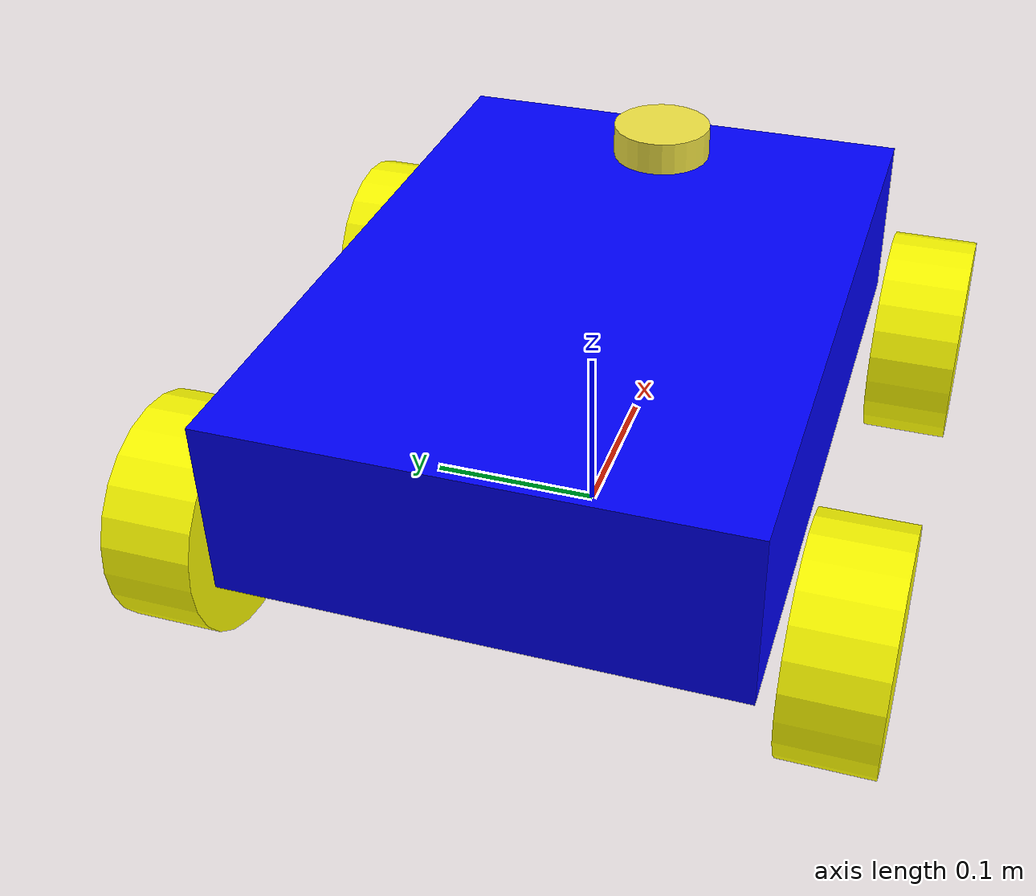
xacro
<?xml version="1.0"?>
<robot xmlns:xacro="http://www.ros.org/wiki/xacro" name="simple_robot">

  <!-- Include constants and parts -->
  <xacro:include filename="constants.xacro"/>
  <xacro:include filename="chassis.xacro"/>
  <xacro:include filename="$(find robot_description)/urdf/constants.xacro"/>
  <xacro:include filename="$(find robot_description)/urdf/base_link.xacro"/>
  <xacro:include filename="$(find robot_description)/urdf/wheel.xacro"/>
  <xacro:include filename="$(find robot_description)/urdf/laser.xacro"/>

  <!-- Set Laser -->
  <xacro:laser_part parent_link="base_link" joint_name="front_laser_joint" xyz="0.15 0 ${chassis_height + (laser_length/2) + wheel_radius}" rpy="0 0 0"/>

  <!-- Create wheels -->
  <xacro:wheel_macro name="rear_left_wheel"   parent="base_link" xyz="-${wheel_separation_x/2}  ${wheel_separation_y/2} ${wheel_radius}" rpy="1.5708 0 0"/>
  <xacro:wheel_macro name="rear_right_wheel"  parent="base_link" xyz="-${wheel_separation_x/2} -${wheel_separation_y/2} ${wheel_radius}" rpy="1.5708 0 0"/>
  <xacro:wheel_macro name="front_left_wheel"  parent="base_link" xyz=" ${wheel_separation_x/2}  ${wheel_separation_y/2} ${wheel_radius}" rpy="1.5708 0 0"/>
  <xacro:wheel_macro name="front_right_wheel" parent="base_link" xyz=" ${wheel_separation_x/2} -${wheel_separation_y/2} ${wheel_radius}" rpy="1.5708 0 0"/>

</robot>

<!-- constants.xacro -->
<robot xmlns:xacro="http://www.ros.org/wiki/xacro" name="constants">

  <xacro:property name="chassis_length" value="0.40"/>
  <xacro:property name="chassis_width" value="0.28"/>
  <xacro:property name="chassis_height" value="0.1"/>

  <xacro:property name="wheel_radius" value="0.0625"/>
  <xacro:property name="wheel_thickness" value="0.05"/>
  <xacro:property name="wheel_separation_x" value="0.29"/>
  <xacro:property name="wheel_separation_y" value="0.35"/>

</robot>

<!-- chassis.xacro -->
<robot xmlns:xacro="http://www.ros.org/wiki/xacro" name="chassis_part">

  <xacro:include filename="constants.xacro"/>
  <xacro:include filename="$(find robot_description)/urdf/constants.xacro"/>

  <link name="chassis">
    <visual>
      <geometry>
        <box size="${chassis_length} ${chassis_width} ${chassis_height}"/>
      </geometry>
      <material name="blue">
        <color rgba="0 0 1 1"/>
      </material>
    </visual>
    <collision>
      <geometry>
        <box size="${chassis_length + 0.01} ${chassis_width + 0.01} ${chassis_height + 0.01}"/>
      </geometry>
    </collision>
    <inertial>
      <mass value="15.0"/>
      <inertia ixx="0.1" ixy="0.0" ixz="0.0"
               iyy="0.1" iyz="0.0"
               izz="0.1"/>
    </inertial>
  </link>

  <joint name="chassis_joint" type="fixed">
    <parent link="base_link"/>
    <child link="chassis"/>
    <origin xyz="0 0 ${wheel_radius + chassis_height/2}" rpy="0 0 0"/>
  </joint>

</robot>

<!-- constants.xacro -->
<robot xmlns:xacro="http://www.ros.org/wiki/xacro" name="constants">

  <xacro:property name="laser_radius" value="0.03"/>
  <xacro:property name="laser_length" value="0.03"/>

</robot>

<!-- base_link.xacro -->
<robot xmlns:xacro="http://www.ros.org/wiki/xacro" name="base_link_part">

  <!-- Base link -->
  <link name="base_footprint"/>

  <joint name="base_footprint_joint" type="fixed">
    <parent link="base_footprint"/>
    <child link="base_link"/>
    <origin xyz="0 0 0" rpy="0 0 0"/>
  </joint>

  <link name="base_link"/>

</robot>

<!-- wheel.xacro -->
<robot xmlns:xacro="http://www.ros.org/wiki/xacro" name="wheel_part">

  <xacro:include filename="constants.xacro"/>

  <xacro:macro name="wheel_macro" params="name parent xyz rpy">
    <link name="${name}">
      <visual>
        <geometry>
          <cylinder radius="${wheel_radius}" length="${wheel_thickness}"/>
        </geometry>
        <material name="yellow">
          <color rgba="1 1 0 1"/>
        </material>
      </visual>
      <collision>
        <geometry>
          <cylinder radius="${wheel_radius}" length="${wheel_thickness}"/>
        </geometry>
      </collision>
      <inertial>
        <mass value="0.2"/>
        <inertia ixx="0.001" ixy="0" ixz="0"
                 iyy="0.001" iyz="0"
                 izz="0.001"/>
      </inertial>
    </link>

    <joint name="${name}_joint" type="continuous">
      <parent link="${parent}"/>
      <child link="${name}"/>
      <origin xyz="${xyz}" rpy="${rpy}"/>
      <axis xyz="0 0 -1"/>
    </joint>
  </xacro:macro>

</robot>

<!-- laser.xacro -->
<robot xmlns:xacro="http://www.ros.org/wiki/xacro" name="laser_part">

  <xacro:include filename="constants.xacro"/>

  <!-- Reusable laser macro -->
  <xacro:macro name="laser_part" params="parent_link joint_name xyz rpy">

    <link name="laser_frame">
      <visual>
        <origin xyz="0 0 -0.01" rpy="0 0 0"/>

        <geometry>
          <cylinder radius="${laser_radius}" length="${laser_length}"/>
        </geometry>
      </visual>

      <collision>
        <geometry>
          <cylinder radius="${laser_radius}" length="${laser_length}"/>
        </geometry>
      </collision>
    </link>

    <joint name="${joint_name}" type="fixed">
      <parent link="${parent_link}"/>
      <child link="laser_frame"/>
      <origin xyz="${xyz}" rpy="${rpy}"/>
    </joint>

  </xacro:macro>

</robot>
